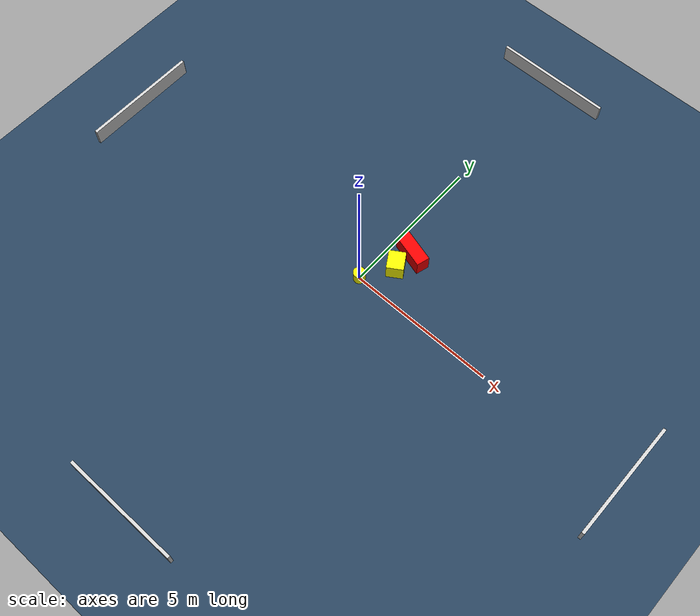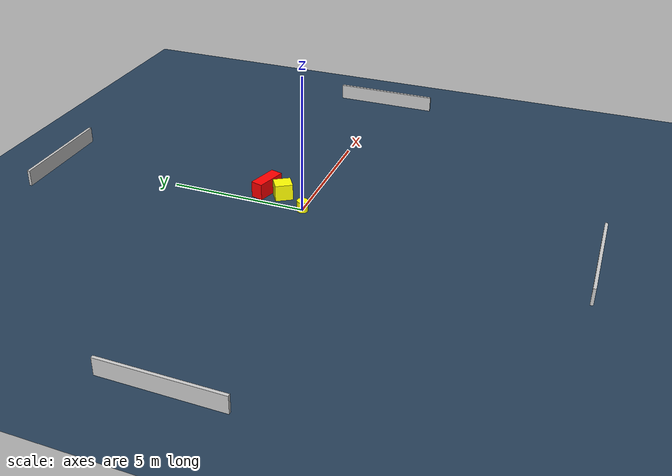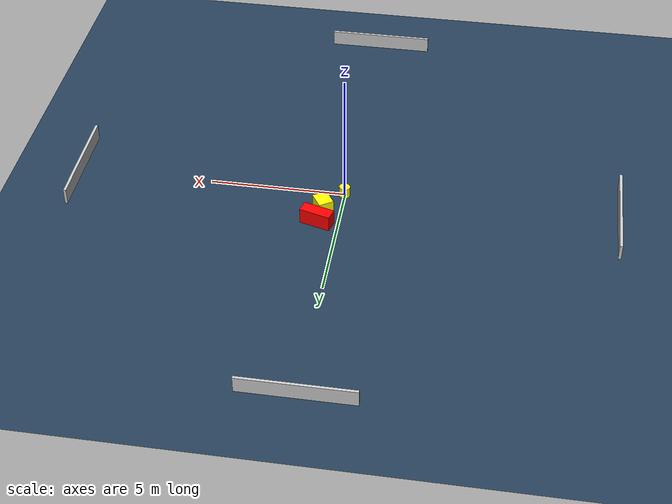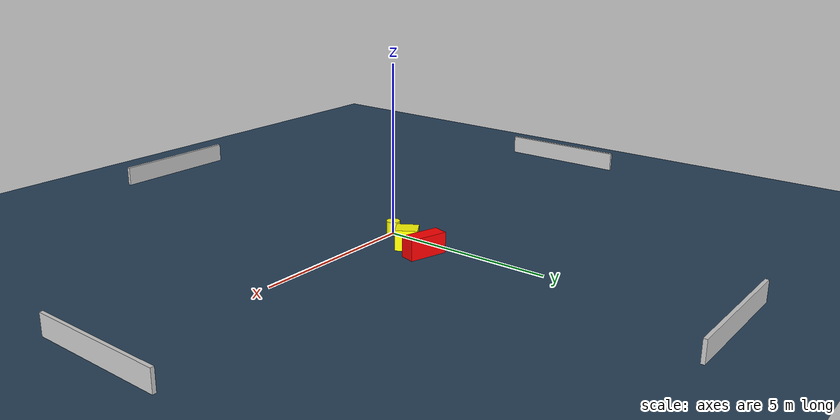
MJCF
<?xml version="1.0" ?>
<mujoco model="generated_environment">
  <option timestep="0.01" integrator="RK4" cone="elliptic"/>
  <default>
    <geom density="1"/>
  </default>
  <asset>
    <texture builtin="gradient" height="3072" name="skybox" rgb1="0.3 0.5 0.7" rgb2="0 0 0" type="skybox" width="512"/>
    <texture builtin="checker" height="300" name="groundplane" rgb1="0.2 0.3 0.4" rgb2="0.1 0.2 0.3" type="2d" width="300"/>
    <material name="groundplane" reflectance="0.2" texrepeat="5 5" texture="groundplane"/>
  </asset>
  <worldbody>
    <light dir="0 0 -1" directional="true" pos="0 0 1.5"/>
    <geom condim="3" friction="0.5 0.005 0.001" material="groundplane" name="floor" pos="0 0 0" size="0 0 0.05" type="plane"/>
    <body name="walls">
      <geom name="wall_1" condim="4" pos="-10.0 0.0 0.3" rgba="0.800000011920929 0.800000011920929 0.800000011920929 1.0" size="0.05 2.0 0.3" type="box"/>
      <geom name="wall_2" condim="4" pos="10.0 0.0 0.3" rgba="0.800000011920929 0.800000011920929 0.800000011920929 1.0" size="0.05 2.0 0.3" type="box"/>
      <geom name="wall_3" condim="4" pos="0.0 -10.0 0.3" rgba="0.800000011920929 0.800000011920929 0.800000011920929 1.0" size="2.0 0.05 0.3" type="box"/>
      <geom name="wall_4" condim="4" pos="0.0 10.0 0.3" rgba="0.800000011920929 0.800000011920929 0.800000011920929 1.0" size="2.0 0.05 0.3" type="box"/>
    </body>
    <body name="robot">
      <joint name="joint_x" type="slide" pos="0 0 0" axis="1 0 0"/>
      <joint name="joint_y" type="slide" pos="0 0 0" axis="0 1 0"/>
      <geom name="robot" type="cylinder" pos="0.0 0.0 0.2" size="0.2 0.2 0.0" mass="5.0" friction="1.0 0.005 0.0001" condim="4" rgba="1.0 1.0 0.0 1.0"/>
    </body>
    <body name="obstacle_1_movable">
      <geom name="obstacle_1_movable" condim="4" pos="0.6401285977943926 1.0146413881609058 0.3" euler="0 0 122.27903056463826" friction="0.0 0.005 0.001" rgba="1.0 1.0 0.0 1.0" size="0.3176652000872653 0.2786806756266467 0.3" type="box" mass="0.1"/>
      <joint type="free"/>
    </body>
    <body name="obstacle_2_static">
      <geom name="obstacle_2_static" condim="4" pos="0.7534475847409786 1.69142083905308 0.3" euler="0 0 254.06184545103403" friction="0.0 0.005 0.001" rgba="1.0 0.0 0.0 1.0" size="0.2232454204622537 0.577029614203009 0.3" type="box"/>
    </body>
  </worldbody>
  <actuator>
    <motor name="actuator_x" joint="joint_x" gear="1" ctrlrange="-1 1"/>
    <motor name="actuator_y" joint="joint_y" gear="1" ctrlrange="-1 1"/>
  </actuator>
</mujoco>
